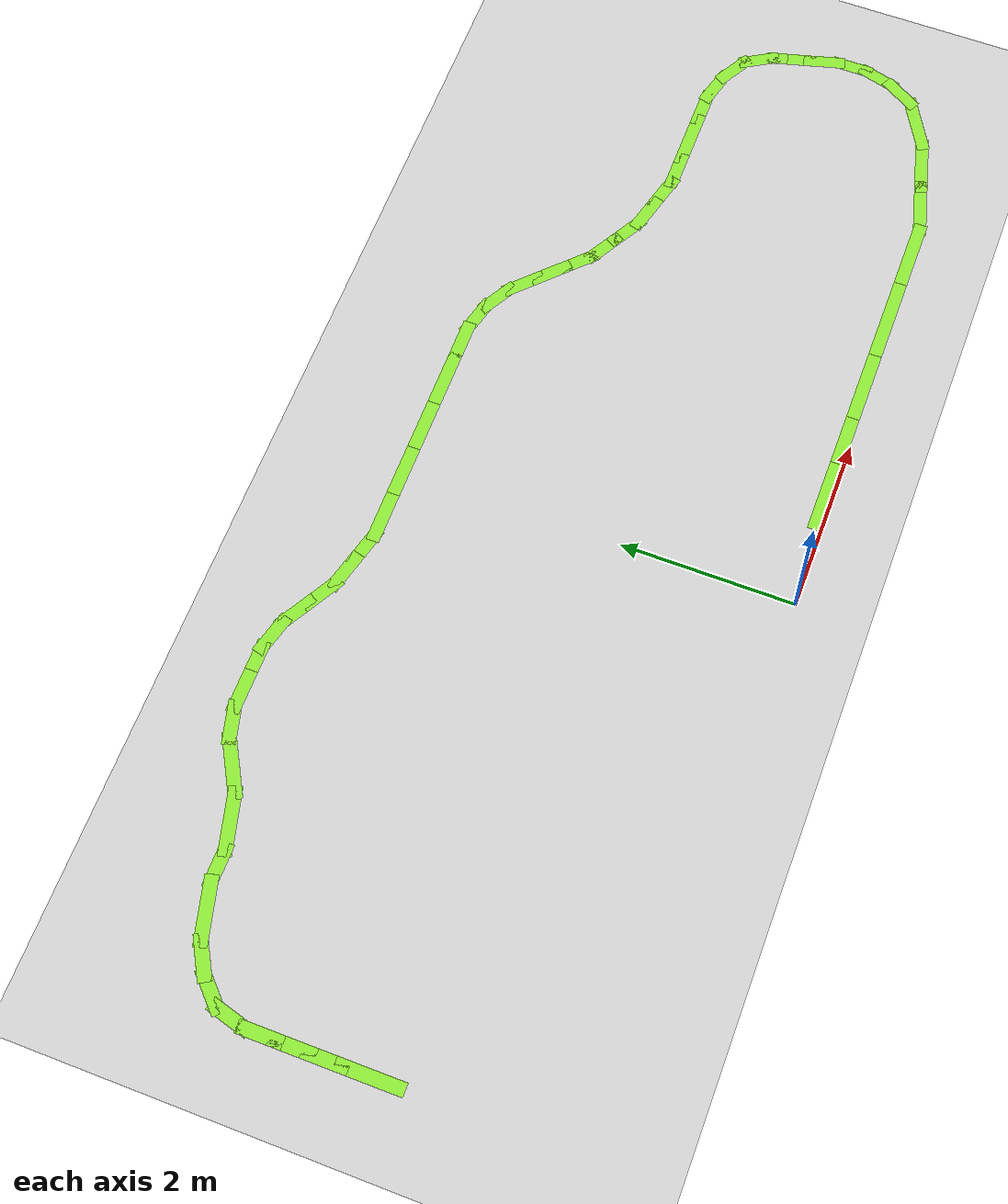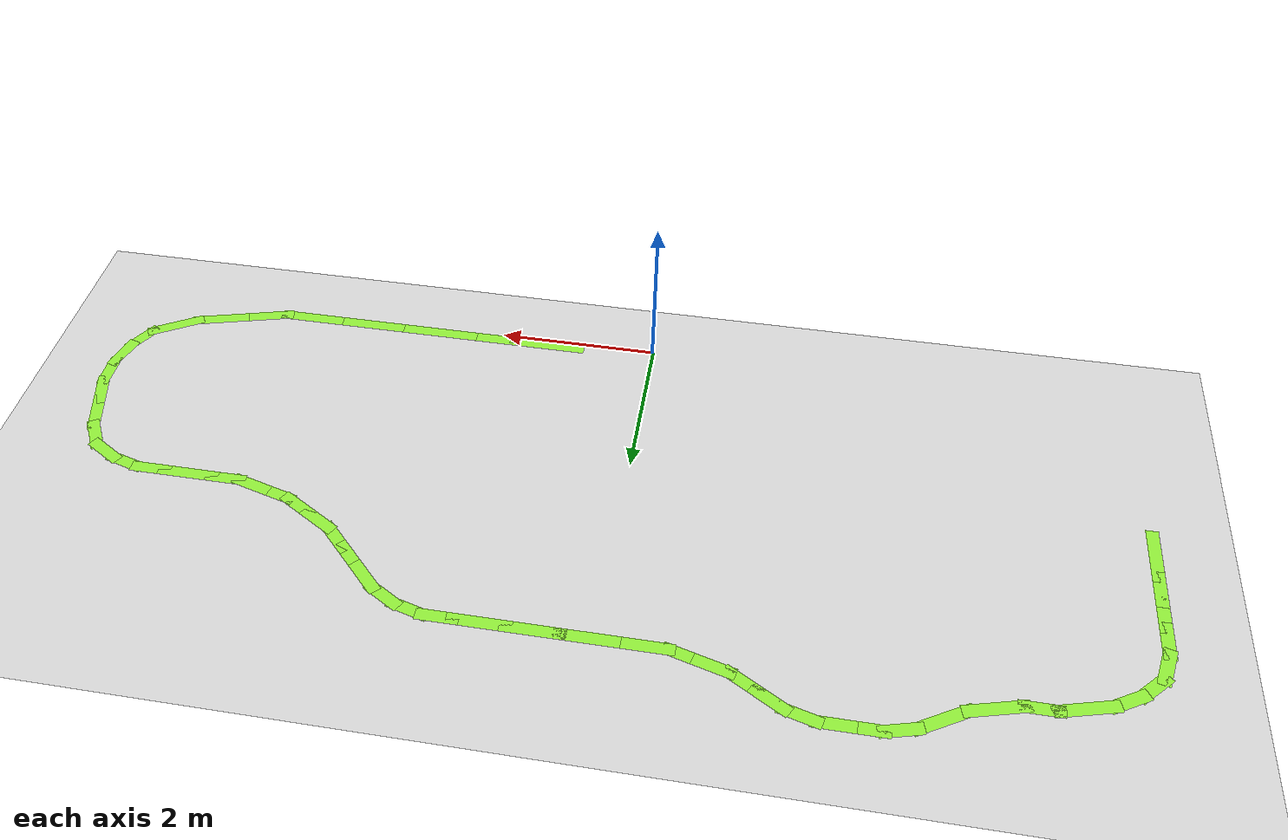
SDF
<sdf version="1.6">
 <world name="default">
  <light name="sun" type="directional">
   <pose>0 0 10 0 -0 0</pose>
   <diffuse>0.8 0.8 0.8 1</diffuse>
   <specular>0.2 0.2 0.2 1</specular>
   <attenuation>
    <range>1000</range>
    <constant>0.9</constant>
    <linear>0.01</linear>
    <quadratic>0.001</quadratic>
   </attenuation>
   <direction>-0.5 0.1 -0.9</direction>
  </light>
  <model name="ground_plane">
   <static>1</static>
   <link name="link">
    <collision name="collision">
     <geometry><plane><normal>0 0 1</normal><size>100 100</size></plane></geometry>
     <surface><friction><ode><mu>100</mu><mu2>50</mu2></ode></friction></surface>
    </collision>
    <visual name="visual">
     <cast_shadows>0</cast_shadows>
     <geometry><plane><normal>0 0 1</normal><size>100 100</size></plane></geometry>
     <material>
      <script><uri>file://media/materials/scripts/gazebo.material</uri><name>Gazebo/Grey</name></script>
     </material>
    </visual>
   </link>
  </model>
  <gravity>0 0 -9.8</gravity>
  <magnetic_field>6e-06 2.3e-05 -4.2e-05</magnetic_field>
  <atmosphere type="adiabatic"/>
  <physics name="default_physics" default="0" type="ode">
   <max_step_size>0.001</max_step_size>
   <real_time_factor>1</real_time_factor>
   <real_time_update_rate>1000</real_time_update_rate>
  </physics>
  <scene><ambient>0.4 0.4 0.4 1</ambient><background>0.7 0.7 0.7 1</background><shadows>1</shadows></scene>
  <spherical_coordinates>
   <surface_model>EARTH_WGS84</surface_model>
   <latitude_deg>0</latitude_deg>
   <longitude_deg>0</longitude_deg>
   <elevation>0</elevation>
   <heading_deg>0</heading_deg>
  </spherical_coordinates>
  <model name="path_museum">
   <pose>0.395085 2.6349 0 0 -0 0</pose>
   <link name="Wall_19">
    <collision name="Wall_19_Collision"><geometry><box><size>1 0.15 0.0</size></box></geometry></collision>
    <visual name="Wall_19_Visual">
     <geometry><box><size>1 0.15 0.0</size></box></geometry>
     <material>
      <script><uri>file://media/materials/scripts/gazebo.material</uri><name>Gazebo/Grey</name></script>
      <ambient>0.541176 0.886275 0.203922 1</ambient>
     </material>
     <meta><layer>0</layer></meta>
    </visual>
    <pose>1.01452 -2.55209 0 0 -0 0</pose>
   </link>
   <link name="Wall_21">
    <collision name="Wall_21_Collision"><geometry><box><size>0.75 0.15 0.0</size></box></geometry></collision>
    <visual name="Wall_21_Visual">
     <geometry><box><size>0.75 0.15 0.0</size></box></geometry>
     <material>
      <script><uri>file://media/materials/scripts/gazebo.material</uri><name>Gazebo/Grey</name></script>
      <ambient>0.541176 0.886275 0.203922 1</ambient>
     </material>
     <meta><layer>0</layer></meta>
    </visual>
    <pose>1.73952 -2.55209 0 0 -0 0</pose>
   </link>
   <link name="Wall_22">
    <collision name="Wall_22_Collision"><geometry><box><size>1 0.15 0.0</size></box></geometry></collision>
    <visual name="Wall_22_Visual">
     <geometry><box><size>1 0.15 0.0</size></box></geometry>
     <material>
      <script><uri>file://media/materials/scripts/gazebo.material</uri><name>Gazebo/Grey</name></script>
      <ambient>0.541176 0.886275 0.203922 1</ambient>
     </material>
     <meta><layer>0</layer></meta>
    </visual>
    <pose>2.46452 -2.55209 0 0 -0 0</pose>
   </link>
   <link name="Wall_23">
    <collision name="Wall_23_Collision"><geometry><box><size>1 0.15 0.0</size></box></geometry></collision>
    <visual name="Wall_23_Visual">
     <geometry><box><size>1 0.15 0.0</size></box></geometry>
     <material>
      <script><uri>file://media/materials/scripts/gazebo.material</uri><name>Gazebo/Grey</name></script>
      <ambient>0.541176 0.886275 0.203922 1</ambient>
     </material>
     <meta><layer>0</layer></meta>
    </visual>
    <pose>3.31452 -2.55209 0 0 -0 0</pose>
   </link>
   <link name="Wall_26">
    <collision name="Wall_26_Collision"><geometry><box><size>1 0.15 0.0</size></box></geometry></collision>
    <visual name="Wall_26_Visual">
     <geometry><box><size>1 0.15 0.0</size></box></geometry>
     <material>
      <script><uri>file://media/materials/scripts/gazebo.material</uri><name>Gazebo/Grey</name></script>
      <ambient>0.541176 0.886275 0.203922 1</ambient>
     </material>
     <meta><layer>0</layer></meta>
    </visual>
    <pose>4.16452 -2.55209 0 0 -0 0</pose>
   </link>
   <link name="Wall_27">
    <collision name="Wall_27_Collision"><geometry><box><size>0.75 0.15 0.0</size></box></geometry></collision>
    <visual name="Wall_27_Visual">
     <geometry><box><size>0.75 0.15 0.0</size></box></geometry>
     <material>
      <script><uri>file://media/materials/scripts/gazebo.material</uri><name>Gazebo/Grey</name></script>
      <ambient>0.541176 0.886275 0.203922 1</ambient>
     </material>
     <meta><layer>0</layer></meta>
    </visual>
    <pose>4.8793 -2.47445 0 0 -0 0.261799</pose>
   </link>
   <link name="Wall_28">
    <collision name="Wall_28_Collision"><geometry><box><size>0.75 0.15 0.0</size></box></geometry></collision>
    <visual name="Wall_28_Visual">
     <geometry><box><size>0.75 0.15 0.0</size></box></geometry>
     <material>
      <script><uri>file://media/materials/scripts/gazebo.material</uri><name>Gazebo/Grey</name></script>
      <ambient>0.541176 0.886275 0.203922 1</ambient>
     </material>
     <meta><layer>0</layer></meta>
    </visual>
    <pose>5.45886 -2.31915 0 0 -0 0.261799</pose>
   </link>
   <link name="Wall_29">
    <collision name="Wall_29_Collision"><geometry><box><size>0.75 0.15 0.0</size></box></geometry></collision>
    <visual name="Wall_29_Visual">
     <geometry><box><size>0.75 0.15 0.0</size></box></geometry>
     <material>
      <script><uri>file://media/materials/scripts/gazebo.material</uri><name>Gazebo/Grey</name></script>
      <ambient>0.541176 0.886275 0.203922 1</ambient>
     </material>
     <meta><layer>0</layer></meta>
    </visual>
    <pose>6.00844 -2.09151 0 0 -0 0.523599</pose>
   </link>
   <link name="Wall_30">
    <collision name="Wall_30_Collision"><geometry><box><size>0.5 0.15 0.0</size></box></geometry></collision>
    <visual name="Wall_30_Visual">
     <geometry><box><size>0.5 0.15 0.0</size></box></geometry>
     <material>
      <script><uri>file://media/materials/scripts/gazebo.material</uri><name>Gazebo/Grey</name></script>
      <ambient>0.541176 0.886275 0.203922 1</ambient>
     </material>
     <meta><layer>0</layer></meta>
    </visual>
    <pose>6.35575 -1.78995 0 0 -0 1.0472</pose>
   </link>
   <link name="Wall_31">
    <collision name="Wall_31_Collision"><geometry><box><size>0.5 0.15 0.0</size></box></geometry></collision>
    <visual name="Wall_31_Visual">
     <geometry><box><size>0.5 0.15 0.0</size></box></geometry>
     <material>
      <script><uri>file://media/materials/scripts/gazebo.material</uri><name>Gazebo/Grey</name></script>
      <ambient>0.541176 0.886275 0.203922 1</ambient>
     </material>
     <meta><layer>0</layer></meta>
    </visual>
    <pose>6.48854 -1.46936 0 0 -0 1.309</pose>
   </link>
   <link name="Wall_32">
    <collision name="Wall_32_Collision"><geometry><box><size>0.5 0.15 0.0</size></box></geometry></collision>
    <visual name="Wall_32_Visual">
     <geometry><box><size>0.5 0.15 0.0</size></box></geometry>
     <material>
      <script><uri>file://media/materials/scripts/gazebo.material</uri><name>Gazebo/Grey</name></script>
      <ambient>0.541176 0.886275 0.203922 1</ambient>
     </material>
     <meta><layer>0</layer></meta>
    </visual>
    <pose>6.53384 -1.12533 0 0 -0 1.5708</pose>
   </link>
   <link name="Wall_33">
    <collision name="Wall_33_Collision"><geometry><box><size>0.5 0.15 0.0</size></box></geometry></collision>
    <visual name="Wall_33_Visual">
     <geometry><box><size>0.5 0.15 0.0</size></box></geometry>
     <material>
      <script><uri>file://media/materials/scripts/gazebo.material</uri><name>Gazebo/Grey</name></script>
      <ambient>0.541176 0.886275 0.203922 1</ambient>
     </material>
     <meta><layer>0</layer></meta>
    </visual>
    <pose>6.48854 -0.781289 0 0 -0 1.8326</pose>
   </link>
   <link name="Wall_34">
    <collision name="Wall_34_Collision"><geometry><box><size>0.5 0.15 0.0</size></box></geometry></collision>
    <visual name="Wall_34_Visual">
     <geometry><box><size>0.5 0.15 0.0</size></box></geometry>
     <material>
      <script><uri>file://media/materials/scripts/gazebo.material</uri><name>Gazebo/Grey</name></script>
      <ambient>0.541176 0.886275 0.203922 1</ambient>
     </material>
     <meta><layer>0</layer></meta>
    </visual>
    <pose>6.39796 -0.443215 0 0 -0 1.8326</pose>
   </link>
   <link name="Wall_37">
    <collision name="Wall_37_Collision"><geometry><box><size>0.25 0.15 0.0</size></box></geometry></collision>
    <visual name="Wall_37_Visual">
     <geometry><box><size>0.25 0.15 0.0</size></box></geometry>
     <material>
      <script><uri>file://media/materials/scripts/gazebo.material</uri><name>Gazebo/Grey</name></script>
      <ambient>0.541176 0.886275 0.203922 1</ambient>
     </material>
     <meta><layer>0</layer></meta>
    </visual>
    <pose>6.33972 -0.225882 0 0 -0 1.8326</pose>
   </link>
   <link name="Wall_38">
    <collision name="Wall_38_Collision"><geometry><box><size>0.5 0.15 0.0</size></box></geometry></collision>
    <visual name="Wall_38_Visual">
     <geometry><box><size>0.5 0.15 0.0</size></box></geometry>
     <material>
      <script><uri>file://media/materials/scripts/gazebo.material</uri><name>Gazebo/Grey</name></script>
      <ambient>0.541176 0.886275 0.203922 1</ambient>
     </material>
     <meta><layer>0</layer></meta>
    </visual>
    <pose>6.23928 -0.026031 0 0 -0 2.0944</pose>
   </link>
   <link name="Wall_39">
    <collision name="Wall_39_Collision"><geometry><box><size>0.5 0.15 0.0</size></box></geometry></collision>
    <visual name="Wall_39_Visual">
     <geometry><box><size>0.5 0.15 0.0</size></box></geometry>
     <material>
      <script><uri>file://media/materials/scripts/gazebo.material</uri><name>Gazebo/Grey</name></script>
      <ambient>0.541176 0.886275 0.203922 1</ambient>
     </material>
     <meta><layer>0</layer></meta>
    </visual>
    <pose>6.00023 0.213023 0 0 -0 2.61799</pose>
   </link>
   <link name="Wall_40">
    <collision name="Wall_40_Collision"><geometry><box><size>0.5 0.15 0.0</size></box></geometry></collision>
    <visual name="Wall_40_Visual">
     <geometry><box><size>0.5 0.15 0.0</size></box></geometry>
     <material>
      <script><uri>file://media/materials/scripts/gazebo.material</uri><name>Gazebo/Grey</name></script>
      <ambient>0.541176 0.886275 0.203922 1</ambient>
     </material>
     <meta><layer>0</layer></meta>
    </visual>
    <pose>5.67964 0.345817 0 0 -0 2.87979</pose>
   </link>
   <link name="Wall_41">
    <collision name="Wall_41_Collision"><geometry><box><size>0.5 0.15 0.0</size></box></geometry></collision>
    <visual name="Wall_41_Visual">
     <geometry><box><size>0.5 0.15 0.0</size></box></geometry>
     <material>
      <script><uri>file://media/materials/scripts/gazebo.material</uri><name>Gazebo/Grey</name></script>
      <ambient>0.541176 0.886275 0.203922 1</ambient>
     </material>
     <meta><layer>0</layer></meta>
    </visual>
    <pose>5.3356 0.39111 0 0 -0 3.14159</pose>
   </link>
   <link name="Wall_42">
    <collision name="Wall_42_Collision"><geometry><box><size>0.75 0.15 0.0</size></box></geometry></collision>
    <visual name="Wall_42_Visual">
     <geometry><box><size>0.75 0.15 0.0</size></box></geometry>
     <material>
      <script><uri>file://media/materials/scripts/gazebo.material</uri><name>Gazebo/Grey</name></script>
      <ambient>0.541176 0.886275 0.203922 1</ambient>
     </material>
     <meta><layer>0</layer></meta>
    </visual>
    <pose>4.8606 0.39111 0 0 -0 3.14159</pose>
   </link>
   <link name="Wall_43">
    <collision name="Wall_43_Collision"><geometry><box><size>0.5 0.15 0.0</size></box></geometry></collision>
    <visual name="Wall_43_Visual">
     <geometry><box><size>0.5 0.15 0.0</size></box></geometry>
     <material>
      <script><uri>file://media/materials/scripts/gazebo.material</uri><name>Gazebo/Grey</name></script>
      <ambient>0.541176 0.886275 0.203922 1</ambient>
     </material>
     <meta><layer>0</layer></meta>
    </visual>
    <pose>4.3856 0.39111 0 0 -0 3.14159</pose>
   </link>
   <link name="Wall_49">
    <collision name="Wall_49_Collision"><geometry><box><size>0.5 0.15 0.0</size></box></geometry></collision>
    <visual name="Wall_49_Visual">
     <geometry><box><size>0.5 0.15 0.0</size></box></geometry>
     <material>
      <script><uri>file://media/materials/scripts/gazebo.material</uri><name>Gazebo/Grey</name></script>
      <ambient>0.541176 0.886275 0.203922 1</ambient>
     </material>
     <meta><layer>0</layer></meta>
    </visual>
    <pose>4.04156 0.436403 0 0 -0 2.87979</pose>
   </link>
   <link name="Wall_50">
    <collision name="Wall_50_Collision"><geometry><box><size>0.5 0.15 0.0</size></box></geometry></collision>
    <visual name="Wall_50_Visual">
     <geometry><box><size>0.5 0.15 0.0</size></box></geometry>
     <material>
      <script><uri>file://media/materials/scripts/gazebo.material</uri><name>Gazebo/Grey</name></script>
      <ambient>0.541176 0.886275 0.203922 1</ambient>
     </material>
     <meta><layer>0</layer></meta>
    </visual>
    <pose>3.70349 0.52699 0 0 -0 2.87979</pose>
   </link>
   <link name="Wall_51">
    <collision name="Wall_51_Collision"><geometry><box><size>0.5 0.15 0.0</size></box></geometry></collision>
    <visual name="Wall_51_Visual">
     <geometry><box><size>0.5 0.15 0.0</size></box></geometry>
     <material>
      <script><uri>file://media/materials/scripts/gazebo.material</uri><name>Gazebo/Grey</name></script>
      <ambient>0.541176 0.886275 0.203922 1</ambient>
     </material>
     <meta><layer>0</layer></meta>
    </visual>
    <pose>3.38289 0.659783 0 0 -0 2.61799</pose>
   </link>
   <link name="Wall_52">
    <collision name="Wall_52_Collision"><geometry><box><size>0.5 0.15 0.0</size></box></geometry></collision>
    <visual name="Wall_52_Visual">
     <geometry><box><size>0.5 0.15 0.0</size></box></geometry>
     <material>
      <script><uri>file://media/materials/scripts/gazebo.material</uri><name>Gazebo/Grey</name></script>
      <ambient>0.541176 0.886275 0.203922 1</ambient>
     </material>
     <meta><layer>0</layer></meta>
    </visual>
    <pose>3.07979 0.834783 0 0 -0 2.61799</pose>
   </link>
   <link name="Wall_59">
    <collision name="Wall_59_Collision"><geometry><box><size>0.5 0.15 0.0</size></box></geometry></collision>
    <visual name="Wall_59_Visual">
     <geometry><box><size>0.5 0.15 0.0</size></box></geometry>
     <material>
      <script><uri>file://media/materials/scripts/gazebo.material</uri><name>Gazebo/Grey</name></script>
      <ambient>0.541176 0.886275 0.203922 1</ambient>
     </material>
     <meta><layer>0</layer></meta>
    </visual>
    <pose>2.80449 1.04603 0 0 -0 2.35619</pose>
   </link>
   <link name="Wall_60">
    <collision name="Wall_60_Collision"><geometry><box><size>0.5 0.15 0.0</size></box></geometry></collision>
    <visual name="Wall_60_Visual">
     <geometry><box><size>0.5 0.15 0.0</size></box></geometry>
     <material>
      <script><uri>file://media/materials/scripts/gazebo.material</uri><name>Gazebo/Grey</name></script>
      <ambient>0.541176 0.886275 0.203922 1</ambient>
     </material>
     <meta><layer>0</layer></meta>
    </visual>
    <pose>2.557 1.29351 0 0 -0 2.35619</pose>
   </link>
   <link name="Wall_61">
    <collision name="Wall_61_Collision"><geometry><box><size>0.5 0.15 0.0</size></box></geometry></collision>
    <visual name="Wall_61_Visual">
     <geometry><box><size>0.5 0.15 0.0</size></box></geometry>
     <material>
      <script><uri>file://media/materials/scripts/gazebo.material</uri><name>Gazebo/Grey</name></script>
      <ambient>0.541176 0.886275 0.203922 1</ambient>
     </material>
     <meta><layer>0</layer></meta>
    </visual>
    <pose>2.30951 1.541 0 0 -0 2.35619</pose>
   </link>
   <link name="Wall_62">
    <collision name="Wall_62_Collision"><geometry><box><size>0.5 0.15 0.0</size></box></geometry></collision>
    <visual name="Wall_62_Visual">
     <geometry><box><size>0.5 0.15 0.0</size></box></geometry>
     <material>
      <script><uri>file://media/materials/scripts/gazebo.material</uri><name>Gazebo/Grey</name></script>
      <ambient>0.541176 0.886275 0.203922 1</ambient>
     </material>
     <meta><layer>0</layer></meta>
    </visual>
    <pose>2.03422 1.75225 0 0 -0 2.61799</pose>
   </link>
   <link name="Wall_63">
    <collision name="Wall_63_Collision"><geometry><box><size>0.5 0.15 0.0</size></box></geometry></collision>
    <visual name="Wall_63_Visual">
     <geometry><box><size>0.5 0.15 0.0</size></box></geometry>
     <material>
      <script><uri>file://media/materials/scripts/gazebo.material</uri><name>Gazebo/Grey</name></script>
      <ambient>0.541176 0.886275 0.203922 1</ambient>
     </material>
     <meta><layer>0</layer></meta>
    </visual>
    <pose>1.71362 1.88504 0 0 -0 2.87979</pose>
   </link>
   <link name="Wall_64">
    <collision name="Wall_64_Collision"><geometry><box><size>0.5 0.15 0.0</size></box></geometry></collision>
    <visual name="Wall_64_Visual">
     <geometry><box><size>0.5 0.15 0.0</size></box></geometry>
     <material>
      <script><uri>file://media/materials/scripts/gazebo.material</uri><name>Gazebo/Grey</name></script>
      <ambient>0.541176 0.886275 0.203922 1</ambient>
     </material>
     <meta><layer>0</layer></meta>
    </visual>
    <pose>1.36959 1.93033 0 0 -0 3.14159</pose>
   </link>
   <link name="Wall_65">
    <collision name="Wall_65_Collision"><geometry><box><size>0.75 0.15 0.0</size></box></geometry></collision>
    <visual name="Wall_65_Visual">
     <geometry><box><size>0.75 0.15 0.0</size></box></geometry>
     <material>
      <script><uri>file://media/materials/scripts/gazebo.material</uri><name>Gazebo/Grey</name></script>
      <ambient>0.541176 0.886275 0.203922 1</ambient>
     </material>
     <meta><layer>0</layer></meta>
    </visual>
    <pose>0.894587 1.93033 0 0 -0 3.14159</pose>
   </link>
   <link name="Wall_66">
    <collision name="Wall_66_Collision"><geometry><box><size>0.75 0.15 0.0</size></box></geometry></collision>
    <visual name="Wall_66_Visual">
     <geometry><box><size>0.75 0.15 0.0</size></box></geometry>
     <material>
      <script><uri>file://media/materials/scripts/gazebo.material</uri><name>Gazebo/Grey</name></script>
      <ambient>0.541176 0.886275 0.203922 1</ambient>
     </material>
     <meta><layer>0</layer></meta>
    </visual>
    <pose>0.294587 1.93033 0 0 -0 3.14159</pose>
   </link>
   <link name="Wall_67">
    <collision name="Wall_67_Collision"><geometry><box><size>0.75 0.15 0.0</size></box></geometry></collision>
    <visual name="Wall_67_Visual">
     <geometry><box><size>0.75 0.15 0.0</size></box></geometry>
     <material>
      <script><uri>file://media/materials/scripts/gazebo.material</uri><name>Gazebo/Grey</name></script>
      <ambient>0.541176 0.886275 0.203922 1</ambient>
     </material>
     <meta><layer>0</layer></meta>
    </visual>
    <pose>-0.305413 1.93033 0 0 -0 3.14159</pose>
   </link>
   <link name="Wall_68">
    <collision name="Wall_68_Collision"><geometry><box><size>0.75 0.15 0.0</size></box></geometry></collision>
    <visual name="Wall_68_Visual">
     <geometry><box><size>0.75 0.15 0.0</size></box></geometry>
     <material>
      <script><uri>file://media/materials/scripts/gazebo.material</uri><name>Gazebo/Grey</name></script>
      <ambient>0.541176 0.886275 0.203922 1</ambient>
     </material>
     <meta><layer>0</layer></meta>
    </visual>
    <pose>-0.905413 1.93033 0 0 -0 3.14159</pose>
   </link>
   <link name="Wall_69">
    <collision name="Wall_69_Collision"><geometry><box><size>0.5 0.15 0.0</size></box></geometry></collision>
    <visual name="Wall_69_Visual">
     <geometry><box><size>0.5 0.15 0.0</size></box></geometry>
     <material>
      <script><uri>file://media/materials/scripts/gazebo.material</uri><name>Gazebo/Grey</name></script>
      <ambient>0.541176 0.886275 0.203922 1</ambient>
     </material>
     <meta><layer>0</layer></meta>
    </visual>
    <pose>-1.37445 1.97562 0 0 -0 2.87979</pose>
   </link>
   <link name="Wall_70">
    <collision name="Wall_70_Collision"><geometry><box><size>0.5 0.15 0.0</size></box></geometry></collision>
    <visual name="Wall_70_Visual">
     <geometry><box><size>0.5 0.15 0.0</size></box></geometry>
     <material>
      <script><uri>file://media/materials/scripts/gazebo.material</uri><name>Gazebo/Grey</name></script>
      <ambient>0.541176 0.886275 0.203922 1</ambient>
     </material>
     <meta><layer>0</layer></meta>
    </visual>
    <pose>-1.71252 2.06621 0 0 -0 2.87979</pose>
   </link>
   <link name="Wall_71">
    <collision name="Wall_71_Collision"><geometry><box><size>0.5 0.15 0.0</size></box></geometry></collision>
    <visual name="Wall_71_Visual">
     <geometry><box><size>0.5 0.15 0.0</size></box></geometry>
     <material>
      <script><uri>file://media/materials/scripts/gazebo.material</uri><name>Gazebo/Grey</name></script>
      <ambient>0.541176 0.886275 0.203922 1</ambient>
     </material>
     <meta><layer>0</layer></meta>
    </visual>
    <pose>-2.03312 2.19901 0 0 -0 2.61799</pose>
   </link>
   <link name="Wall_72">
    <collision name="Wall_72_Collision"><geometry><box><size>0.5 0.15 0.0</size></box></geometry></collision>
    <visual name="Wall_72_Visual">
     <geometry><box><size>0.5 0.15 0.0</size></box></geometry>
     <material>
      <script><uri>file://media/materials/scripts/gazebo.material</uri><name>Gazebo/Grey</name></script>
      <ambient>0.541176 0.886275 0.203922 1</ambient>
     </material>
     <meta><layer>0</layer></meta>
    </visual>
    <pose>-2.33623 2.374 0 0 -0 2.61799</pose>
   </link>
   <link name="Wall_73">
    <collision name="Wall_73_Collision"><geometry><box><size>0.5 0.15 0.0</size></box></geometry></collision>
    <visual name="Wall_73_Visual">
     <geometry><box><size>0.5 0.15 0.0</size></box></geometry>
     <material>
      <script><uri>file://media/materials/scripts/gazebo.material</uri><name>Gazebo/Grey</name></script>
      <ambient>0.541176 0.886275 0.203922 1</ambient>
     </material>
     <meta><layer>0</layer></meta>
    </visual>
    <pose>-2.65682 2.5068 0 0 -0 2.87979</pose>
   </link>
   <link name="Wall_74">
    <collision name="Wall_74_Collision"><geometry><box><size>0.5 0.15 0.0</size></box></geometry></collision>
    <visual name="Wall_74_Visual">
     <geometry><box><size>0.5 0.15 0.0</size></box></geometry>
     <material>
      <script><uri>file://media/materials/scripts/gazebo.material</uri><name>Gazebo/Grey</name></script>
      <ambient>0.541176 0.886275 0.203922 1</ambient>
     </material>
     <meta><layer>0</layer></meta>
    </visual>
    <pose>-3.00085 2.55209 0 0 -0 3.14159</pose>
   </link>
   <link name="Wall_75">
    <collision name="Wall_75_Collision"><geometry><box><size>0.5 0.15 0.0</size></box></geometry></collision>
    <visual name="Wall_75_Visual">
     <geometry><box><size>0.5 0.15 0.0</size></box></geometry>
     <material>
      <script><uri>file://media/materials/scripts/gazebo.material</uri><name>Gazebo/Grey</name></script>
      <ambient>0.541176 0.886275 0.203922 1</ambient>
     </material>
     <meta><layer>0</layer></meta>
    </visual>
    <pose>-3.35085 2.55209 0 0 -0 3.14159</pose>
   </link>
   <link name="Wall_76">
    <collision name="Wall_76_Collision"><geometry><box><size>0.5 0.15 0.0</size></box></geometry></collision>
    <visual name="Wall_76_Visual">
     <geometry><box><size>0.5 0.15 0.0</size></box></geometry>
     <material>
      <script><uri>file://media/materials/scripts/gazebo.material</uri><name>Gazebo/Grey</name></script>
      <ambient>0.541176 0.886275 0.203922 1</ambient>
     </material>
     <meta><layer>0</layer></meta>
    </visual>
    <pose>-3.69489 2.5068 0 0 -0 -2.87979</pose>
   </link>
   <link name="Wall_77">
    <collision name="Wall_77_Collision"><geometry><box><size>0.75 0.15 0.0</size></box></geometry></collision>
    <visual name="Wall_77_Visual">
     <geometry><box><size>0.75 0.15 0.0</size></box></geometry>
     <material>
      <script><uri>file://media/materials/scripts/gazebo.material</uri><name>Gazebo/Grey</name></script>
      <ambient>0.541176 0.886275 0.203922 1</ambient>
     </material>
     <meta><layer>0</layer></meta>
    </visual>
    <pose>-4.12373 2.3115 0 0 -0 -2.61799</pose>
   </link>
   <link name="Wall_78">
    <collision name="Wall_78_Collision"><geometry><box><size>0.75 0.15 0.0</size></box></geometry></collision>
    <visual name="Wall_78_Visual">
     <geometry><box><size>0.75 0.15 0.0</size></box></geometry>
     <material>
      <script><uri>file://media/materials/scripts/gazebo.material</uri><name>Gazebo/Grey</name></script>
      <ambient>0.541176 0.886275 0.203922 1</ambient>
     </material>
     <meta><layer>0</layer></meta>
    </visual>
    <pose>-4.67332 2.08386 0 0 -0 -2.87979</pose>
   </link>
   <link name="Wall_79">
    <collision name="Wall_79_Collision"><geometry><box><size>0.5 0.15 0.0</size></box></geometry></collision>
    <visual name="Wall_79_Visual">
     <geometry><box><size>0.5 0.15 0.0</size></box></geometry>
     <material>
      <script><uri>file://media/materials/scripts/gazebo.material</uri><name>Gazebo/Grey</name></script>
      <ambient>0.541176 0.886275 0.203922 1</ambient>
     </material>
     <meta><layer>0</layer></meta>
    </visual>
    <pose>-5.1381 2.00621 0 0 -0 3.14159</pose>
   </link>
   <link name="Wall_80">
    <collision name="Wall_80_Collision"><geometry><box><size>0.75 0.15 0.0</size></box></geometry></collision>
    <visual name="Wall_80_Visual">
     <geometry><box><size>0.75 0.15 0.0</size></box></geometry>
     <material>
      <script><uri>file://media/materials/scripts/gazebo.material</uri><name>Gazebo/Grey</name></script>
      <ambient>0.541176 0.886275 0.203922 1</ambient>
     </material>
     <meta><layer>0</layer></meta>
    </visual>
    <pose>-5.60288 1.92857 0 0 -0 -2.87979</pose>
   </link>
   <link name="Wall_81">
    <collision name="Wall_81_Collision"><geometry><box><size>0.5 0.15 0.0</size></box></geometry></collision>
    <visual name="Wall_81_Visual">
     <geometry><box><size>0.5 0.15 0.0</size></box></geometry>
     <material>
      <script><uri>file://media/materials/scripts/gazebo.material</uri><name>Gazebo/Grey</name></script>
      <ambient>0.541176 0.886275 0.203922 1</ambient>
     </material>
     <meta><layer>0</layer></meta>
    </visual>
    <pose>-6.04421 1.76342 0 0 -0 -2.61799</pose>
   </link>
   <link name="Wall_82">
    <collision name="Wall_82_Collision"><geometry><box><size>0.5 0.15 0.0</size></box></geometry></collision>
    <visual name="Wall_82_Visual">
     <geometry><box><size>0.5 0.15 0.0</size></box></geometry>
     <material>
      <script><uri>file://media/materials/scripts/gazebo.material</uri><name>Gazebo/Grey</name></script>
      <ambient>0.541176 0.886275 0.203922 1</ambient>
     </material>
     <meta><layer>0</layer></meta>
    </visual>
    <pose>-6.31951 1.55218 0 0 -0 -2.35619</pose>
   </link>
   <link name="Wall_83">
    <collision name="Wall_83_Collision"><geometry><box><size>0.5 0.15 0.0</size></box></geometry></collision>
    <visual name="Wall_83_Visual">
     <geometry><box><size>0.5 0.15 0.0</size></box></geometry>
     <material>
      <script><uri>file://media/materials/scripts/gazebo.material</uri><name>Gazebo/Grey</name></script>
      <ambient>0.541176 0.886275 0.203922 1</ambient>
     </material>
     <meta><layer>0</layer></meta>
    </visual>
    <pose>-6.48854 1.2594 0 0 -0 -1.8326</pose>
   </link>
   <link name="Wall_84">
    <collision name="Wall_84_Collision"><geometry><box><size>0.5 0.15 0.0</size></box></geometry></collision>
    <visual name="Wall_84_Visual">
     <geometry><box><size>0.5 0.15 0.0</size></box></geometry>
     <material>
      <script><uri>file://media/materials/scripts/gazebo.material</uri><name>Gazebo/Grey</name></script>
      <ambient>0.541176 0.886275 0.203922 1</ambient>
     </material>
     <meta><layer>0</layer></meta>
    </visual>
    <pose>-6.53384 0.915361 0 0 -0 -1.5708</pose>
   </link>
   <link name="Wall_85">
    <collision name="Wall_85_Collision"><geometry><box><size>0.5 0.15 0.0</size></box></geometry></collision>
    <visual name="Wall_85_Visual">
     <geometry><box><size>0.5 0.15 0.0</size></box></geometry>
     <material>
      <script><uri>file://media/materials/scripts/gazebo.material</uri><name>Gazebo/Grey</name></script>
      <ambient>0.541176 0.886275 0.203922 1</ambient>
     </material>
     <meta><layer>0</layer></meta>
    </visual>
    <pose>-6.53384 0.565361 0 0 -0 -1.5708</pose>
   </link>
   <link name="Wall_86">
    <collision name="Wall_86_Collision"><geometry><box><size>0.5 0.15 0.0</size></box></geometry></collision>
    <visual name="Wall_86_Visual">
     <geometry><box><size>0.5 0.15 0.0</size></box></geometry>
     <material>
      <script><uri>file://media/materials/scripts/gazebo.material</uri><name>Gazebo/Grey</name></script>
      <ambient>0.541176 0.886275 0.203922 1</ambient>
     </material>
     <meta><layer>0</layer></meta>
    </visual>
    <pose>-6.53384 0.215361 0 0 -0 -1.5708</pose>
   </link>
   <link name="Wall_87">
    <collision name="Wall_87_Collision"><geometry><box><size>0.75 0.15 0.0</size></box></geometry></collision>
    <visual name="Wall_87_Visual">
     <geometry><box><size>0.75 0.15 0.0</size></box></geometry>
     <material>
      <script><uri>file://media/materials/scripts/gazebo.material</uri><name>Gazebo/Grey</name></script>
      <ambient>0.541176 0.886275 0.203922 1</ambient>
     </material>
     <meta><layer>0</layer></meta>
    </visual>
    <pose>-6.53384 -0.259639 0 0 -0 -1.5708</pose>
   </link>
   <static>1</static>
  </model>
 </world>
</sdf>
